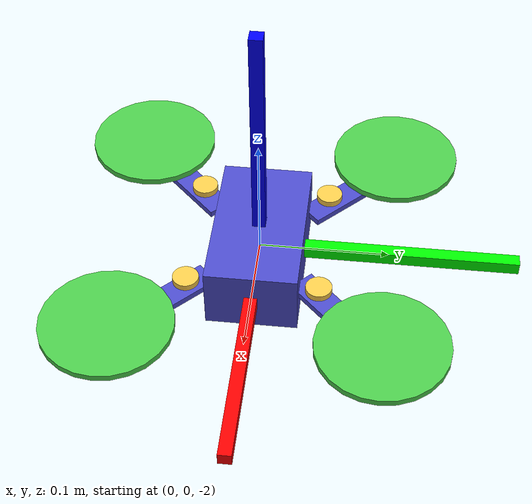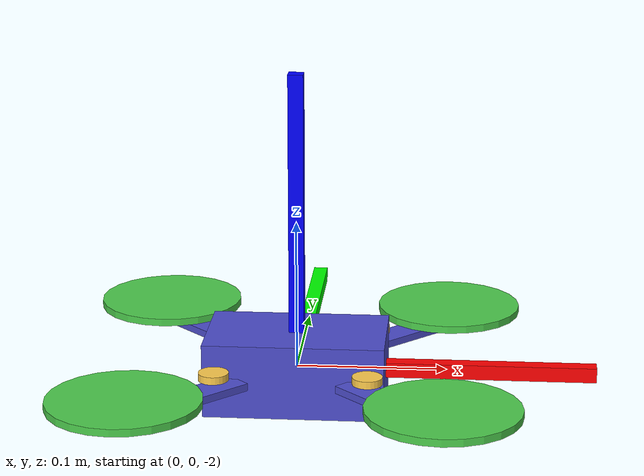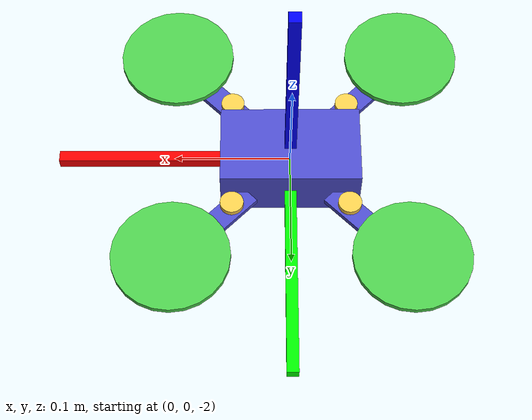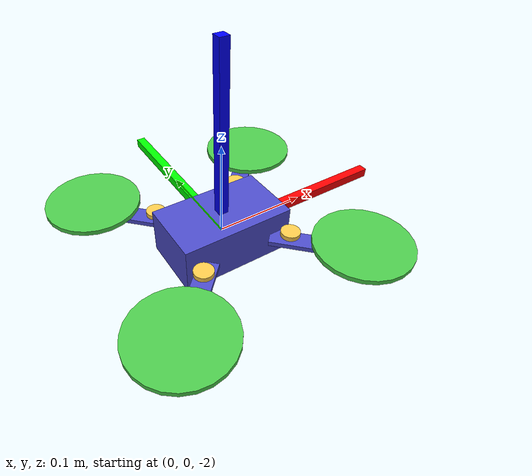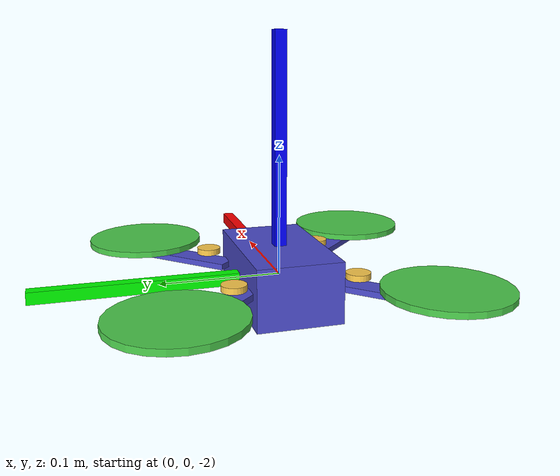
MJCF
<mujoco model="quadrotor0">
	<compiler inertiafromgeom="true" coordinate="local"/>
	<option	timestep="0.01" gravity="0 0 -9.81" density="1" viscosity="1e-5" />
	<worldbody>
		<geom name="floor" pos="0 0 -4" size="2 2 .2" type="plane"  conaffinity="1" rgba="1 1 1 1" condim="3"/>
		<body name="quadrotor" pos="0 0 -2">
			<geom name="core" type="box" pos="0 0 0" quat = "1. 0. 0. 0" size="0.06 0.035 0.025"  rgba="0.3 0.3 0.8 1" mass = ".2"/>

            <!-- 4 arms -->
			<geom name="a00" type="box" pos=".071 0.071 0.0" size="0.05 0.01 0.0025"  quat = ".924 0.0 0.0 0.383" rgba="0.3 0.3 0.8 1" mass = ".025"/>
			<geom name="a10" type="box" pos=".071 -0.071 0.0" size="0.05 0.01 0.0025"  quat = ".383 0.0 0.0 0.924" rgba="0.3 0.3 0.8 1" mass = ".025"/>
			<geom name="a20" type="box" pos="-0.071 -0.071 0.0" size="0.05 0.01 0.0025"  quat = "-.383 0.0 0.0 0.924" rgba="0.3 0.3 0.8 1" mass = ".025"/>
			<geom name="a30" type="box" pos="-.071 0.071 0.0" size="0.05 0.01 0.0025"  quat = ".924 0.0 0.0 -0.383" rgba="0.3 0.3 0.8 1" mass = ".025"/>

			<joint name="root"   type="free" damping="0" armature="0" pos="0 0 0" />

			<!-- Actuator sites to attach actuators  -->
            <site name="thrust" type="box" pos="0 0 0"  size="0.06 0.035 0.025"  quat = "1.0 0.0 0.0 0." rgba="0.3 0.8 0.3 1"/>
			<site name="rateX" type="box" pos="0 0 0" quat = "1. 0. 0. 0."  size="0.06 0.035 0.025" rgba="0.3 0.8 0.3 1" />
			<site name="rateY" type="box" pos="0 0 0" quat = "1. 0. 0. 0."	size="0.06 0.035 0.025" rgba="0.3 0.8 0.3 1" />
			<site name="rateZ" type="box" pos="0 0 0" quat = "1. 0. 0. 0."  size="0.06 0.035 0.025" rgba="0.3 0.8 0.3 1" />

            <!-- Motor sites to attach motor actuators -->
            <site name="motor0" type="cylinder" pos=" 0.05  0.05 0.01"  size="0.01 0.0025"  quat = "1.0 0.0 0.0 0." rgba="1 0.8 0.3 1"/>
            <site name="motor1" type="cylinder" pos=" 0.05 -0.05 0.01"  size="0.01 0.0025"  quat = "0.7071068, 0, 0, 0.7071068" rgba="1 0.8 0.3 1"/>
            <site name="motor2" type="cylinder" pos="-0.05 -0.05 0.01"  size="0.01 0.0025"  quat = "0.7071068, 0, 0, 0.7071068" rgba="1 0.8 0.3 1"/>
            <site name="motor3" type="cylinder" pos="-0.05  0.05 0.01"  size="0.01 0.0025"  quat = "0.7071068, 0, 0, 0.7071068" rgba="1 0.8 0.3 1"/>

			<!-- Thruster geometries for collisions since site's are excluded from collision checking -->
            <geom name="thruster0" type="cylinder" pos=" 0.1  0.1  0.01" size="0.05 0.0025"  quat = "1.0 0.0 0.0 0." rgba="0.3 0.8 0.3 1" mass = ".025"/>
            <geom name="thruster1" type="cylinder" pos=" 0.1 -0.1  0.01" size="0.05 0.0025"  quat = "1.0 0.0 0.0 0." rgba="0.3 0.8 0.3 1" mass = ".025"/>
            <geom name="thruster2" type="cylinder" pos="-0.1 -0.1  0.01" size="0.05 0.0025"  quat = "1.0 0.0 0.0 0." rgba="0.3 0.8 0.3 1" mass = ".025"/>
            <geom name="thruster3" type="cylinder" pos="-0.1  0.1  0.01" size="0.05 0.0025"  quat = "1.0 0.0 0.0 0." rgba="0.3 0.8 0.3 1" mass = ".025"/>

            <!-- Visualization of the coordinate frame -->
			<site name="qcX" type="box" pos="0.1 0.0 0.0" size="0.1 0.005 0.005"  quat = " 1.000  0.0  0.0    0."     rgba="1 0 0 1" />
			<site name="qcY" type="box" pos="0.0 0.1 0.0" size="0.1 0.005 0.005"  quat = " 0.707  0.0  0.0    0.707"  rgba="0 1 0 1" />
			<site name="qcZ" type="box" pos="0.0 0.0 0.1" size="0.1 0.005 0.005"  quat = "-0.707  0.0  0.707  0."     rgba="0 0 1 1" />
		</body>
	</worldbody>
    <actuator>
		<motor ctrllimited="true" ctrlrange="0.0 7.0" gear="0. 0. 1. 0. 0.  0." site="thrust"/>
		<velocity ctrllimited="true" ctrlrange="-1 1" gear="0. 0. 0. 1. 0.  0." kv="0.1" site="rateX"/>
		<velocity ctrllimited="true" ctrlrange="-1 1" gear="0. 0. 0. 0. 1.  0." kv="0.1" site="rateY"/>
		<velocity ctrllimited="true" ctrlrange="-1 1" gear="0. 0. 0. 0. 0.  1." kv="0.1" site="rateZ"/>
        <motor ctrllimited="true" ctrlrange="0.0 1.0" gear="0. 0. 1. 0. 0. -0.1" site="motor0"/>
        <motor ctrllimited="true" ctrlrange="0.0 1.0" gear="0. 0. 1. 0. 0.  0.1" site="motor1"/>
        <motor ctrllimited="true" ctrlrange="0.0 1.0" gear="0. 0. 1. 0. 0. -0.1" site="motor2"/>
        <motor ctrllimited="true" ctrlrange="0.0 1.0" gear="0. 0. 1. 0. 0.  0.1" site="motor3"/>
	</actuator>
</mujoco>
